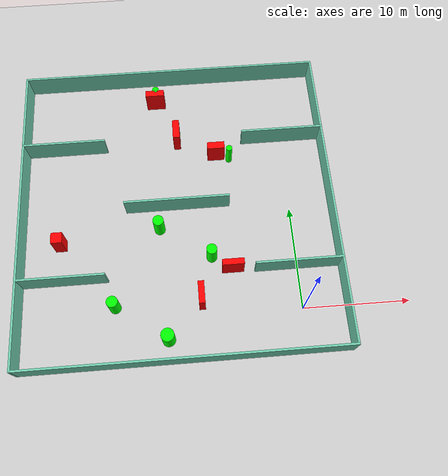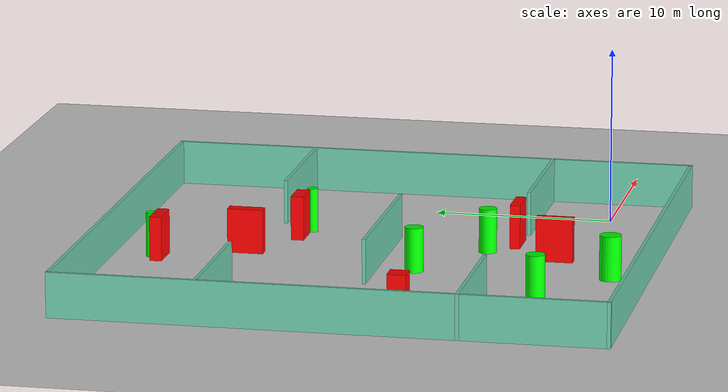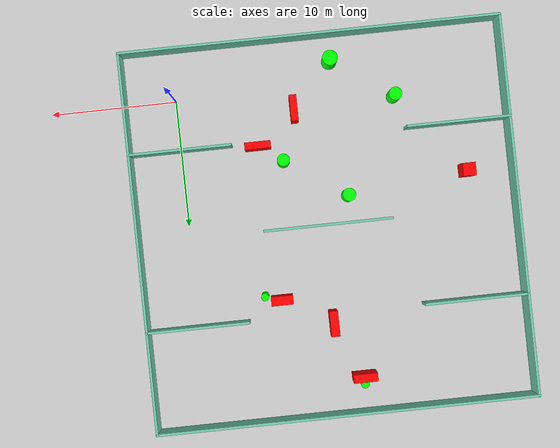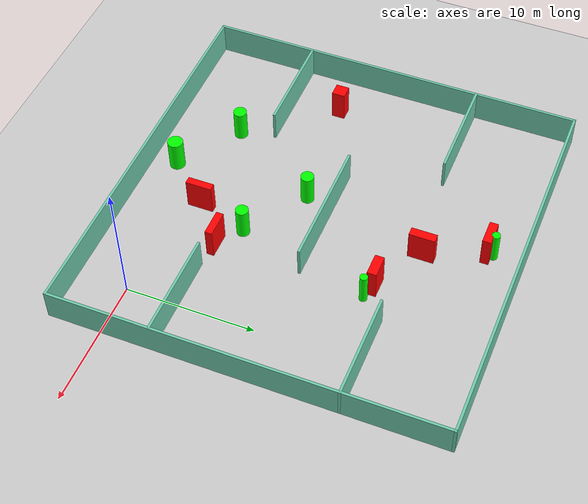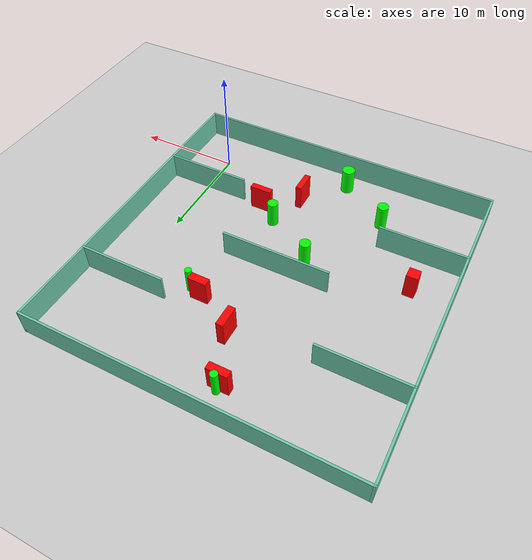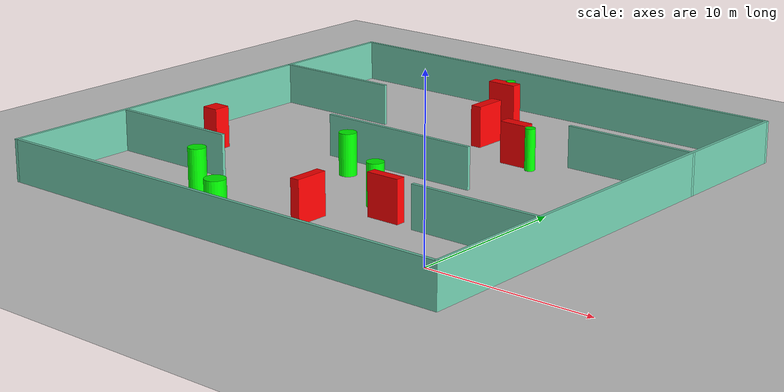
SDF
<sdf version="1.7">
 <world name="default">
  <light name="sun" type="directional">
   <pose>0 0 10 0 -0 0</pose>
   <diffuse>0.8 0.8 0.8 1</diffuse>
   <specular>0.2 0.2 0.2 1</specular>
   <attenuation>
    <range>1000</range>
    <constant>0.9</constant>
    <linear>0.01</linear>
    <quadratic>0.001</quadratic>
   </attenuation>
   <direction>-0.5 0.1 -0.9</direction>
   <spot><inner_angle>0</inner_angle><outer_angle>0</outer_angle><falloff>0</falloff></spot>
  </light>
  <model name="ground_plane">
   <static>1</static>
   <link name="link">
    <collision name="collision">
     <geometry><plane><normal>0 0 1</normal><size>100 100</size></plane></geometry>
     <surface>
      <contact><collide_bitmask>65535</collide_bitmask></contact>
      <friction><ode><mu>100</mu><mu2>50</mu2></ode></friction>
     </surface>
    </collision>
    <visual name="visual">
     <cast_shadows>0</cast_shadows>
     <geometry><plane><normal>0 0 1</normal><size>100 100</size></plane></geometry>
     <material>
      <script><uri>file://media/materials/scripts/gazebo.material</uri><name>Gazebo/Grey</name></script>
     </material>
    </visual>
   </link>
  </model>
  <gravity>0 0 -9.8</gravity>
  <magnetic_field>6e-06 2.3e-05 -4.2e-05</magnetic_field>
  <atmosphere type="adiabatic"/>
  <physics type="ode">
   <max_step_size>0.001</max_step_size>
   <real_time_factor>1</real_time_factor>
   <real_time_update_rate>1000</real_time_update_rate>
  </physics>
  <scene><ambient>0.4 0.4 0.4 1</ambient><background>0.7 0.7 0.7 1</background><shadows>1</shadows></scene>
  <spherical_coordinates>
   <surface_model>EARTH_WGS84</surface_model>
   <latitude_deg>0</latitude_deg>
   <longitude_deg>0</longitude_deg>
   <elevation>0</elevation>
   <heading_deg>0</heading_deg>
  </spherical_coordinates>
  <model name="my_base_walls">
   <link name="Wall_10">
    <collision name="Wall_10_Collision">
     <geometry><box><size>8.2 0.2 2.5</size></box></geometry>
     <pose>0 0 1.25 0 -0 0</pose>
    </collision>
    <visual name="Wall_10_Visual">
     <pose>0 0 1.25 0 -0 0</pose>
     <geometry><box><size>8.2 0.2 2.5</size></box></geometry>
     <material>
      <script><uri>file://media/materials/scripts/gazebo.material</uri><name>Gazebo/Grey</name></script>
      <ambient>0.435294 0.796078 0.67451 1</ambient>
     </material>
     <meta><layer>0</layer></meta>
    </visual>
    <pose>-11 -7 0 0 -0 0</pose>
   </link>
   <link name="Wall_12">
    <collision name="Wall_12_Collision">
     <geometry><box><size>8.2 0.2 2.5</size></box></geometry>
     <pose>0 0 1.25 0 -0 0</pose>
    </collision>
    <visual name="Wall_12_Visual">
     <pose>0 0 1.25 0 -0 0</pose>
     <geometry><box><size>8.2 0.2 2.5</size></box></geometry>
     <material>
      <script><uri>file://media/materials/scripts/gazebo.material</uri><name>Gazebo/Grey</name></script>
      <ambient>0.435294 0.796078 0.67451 1</ambient>
     </material>
     <meta><layer>0</layer></meta>
    </visual>
    <pose>-11 7 0 0 -0 0</pose>
   </link>
   <link name="Wall_14">
    <collision name="Wall_14_Collision">
     <geometry><box><size>8.2 0.2 2.5</size></box></geometry>
     <pose>0 0 1.25 0 -0 0</pose>
    </collision>
    <visual name="Wall_14_Visual">
     <pose>0 0 1.25 0 -0 0</pose>
     <geometry><box><size>8.2 0.2 2.5</size></box></geometry>
     <material>
      <script><uri>file://media/materials/scripts/gazebo.material</uri><name>Gazebo/Grey</name></script>
      <ambient>0.435294 0.796078 0.67451 1</ambient>
     </material>
     <meta><layer>0</layer></meta>
    </visual>
    <pose>11 7 0 0 -0 3.14159</pose>
   </link>
   <link name="Wall_16">
    <collision name="Wall_16_Collision">
     <geometry><box><size>10.2 0.2 2.5</size></box></geometry>
     <pose>0 0 1.25 0 -0 0</pose>
    </collision>
    <visual name="Wall_16_Visual">
     <pose>0 0 1.25 0 -0 0</pose>
     <geometry><box><size>10.2 0.2 2.5</size></box></geometry>
     <material>
      <script><uri>file://media/materials/scripts/gazebo.material</uri><name>Gazebo/Grey</name></script>
      <ambient>0.435294 0.796078 0.67451 1</ambient>
     </material>
     <meta><layer>0</layer></meta>
    </visual>
    <pose>0 0 0 0 -0 3.14159</pose>
   </link>
   <link name="Wall_2">
    <collision name="Wall_2_Collision">
     <geometry><box><size>30.2 0.2 2.5</size></box></geometry>
     <pose>0 0 1.25 0 -0 0</pose>
    </collision>
    <visual name="Wall_2_Visual">
     <pose>0 0 1.25 0 -0 0</pose>
     <geometry><box><size>30.2 0.2 2.5</size></box></geometry>
     <material>
      <script><uri>file://media/materials/scripts/gazebo.material</uri><name>Gazebo/Grey</name></script>
      <ambient>0.435294 0.796078 0.67451 1</ambient>
     </material>
     <meta><layer>0</layer></meta>
    </visual>
    <pose>0 -15 0 0 -0 3.14159</pose>
   </link>
   <link name="Wall_3">
    <collision name="Wall_3_Collision">
     <geometry><box><size>30.2 0.2 2.5</size></box></geometry>
     <pose>0 0 1.25 0 -0 0</pose>
    </collision>
    <visual name="Wall_3_Visual">
     <pose>0 0 1.25 0 -0 0</pose>
     <geometry><box><size>30.2 0.2 2.5</size></box></geometry>
     <material>
      <script><uri>file://media/materials/scripts/gazebo.material</uri><name>Gazebo/Grey</name></script>
      <ambient>0.435294 0.796078 0.67451 1</ambient>
     </material>
     <meta><layer>0</layer></meta>
    </visual>
    <pose>-15 0 0 0 -0 1.5708</pose>
   </link>
   <link name="Wall_4">
    <collision name="Wall_4_Collision">
     <geometry><box><size>30.2 0.2 2.5</size></box></geometry>
     <pose>0 0 1.25 0 -0 0</pose>
    </collision>
    <visual name="Wall_4_Visual">
     <pose>0 0 1.25 0 -0 0</pose>
     <geometry><box><size>30.2 0.2 2.5</size></box></geometry>
     <material>
      <script><uri>file://media/materials/scripts/gazebo.material</uri><name>Gazebo/Grey</name></script>
      <ambient>0.435294 0.796078 0.67451 1</ambient>
     </material>
     <meta><layer>0</layer></meta>
    </visual>
    <pose>0 15 0 0 -0 0</pose>
   </link>
   <link name="Wall_6">
    <collision name="Wall_6_Collision">
     <geometry><box><size>30.2 0.2 2.5</size></box></geometry>
     <pose>0 0 1.25 0 -0 0</pose>
    </collision>
    <visual name="Wall_6_Visual">
     <pose>0 0 1.25 0 -0 0</pose>
     <geometry><box><size>30.2 0.2 2.5</size></box></geometry>
     <material>
      <script><uri>file://media/materials/scripts/gazebo.material</uri><name>Gazebo/Grey</name></script>
      <ambient>0.435294 0.796078 0.67451 1</ambient>
     </material>
     <meta><layer>0</layer></meta>
    </visual>
    <pose>15 0 0 0 -0 1.5708</pose>
   </link>
   <link name="Wall_8">
    <collision name="Wall_8_Collision">
     <geometry><box><size>8.2 0.2 2.5</size></box></geometry>
     <pose>0 0 1.25 0 -0 0</pose>
    </collision>
    <visual name="Wall_8_Visual">
     <pose>0 0 1.25 0 -0 0</pose>
     <geometry><box><size>8.2 0.2 2.5</size></box></geometry>
     <material>
      <script><uri>file://media/materials/scripts/gazebo.material</uri><name>Gazebo/Grey</name></script>
      <ambient>0.435294 0.796078 0.67451 1</ambient>
     </material>
     <meta><layer>0</layer></meta>
    </visual>
    <pose>11 -7 0 0 -0 3.14159</pose>
   </link>
   <static>1</static>
   <pose>-11 11 0 0 -0 0</pose>
  </model>
  <model name="cylinder1">
   <static>1</static>
   <link name="link">
    <inertial>
     <mass>1</mass>
     <inertia><ixx>0.5</ixx><ixy>0</ixy><ixz>0</ixz><iyy>0.5</iyy><iyz>0</iyz><izz>1</izz></inertia>
    </inertial>
    <collision name="collision">
     <geometry><cylinder><radius>0.605148153335664</radius><length>2.5</length></cylinder></geometry>
    </collision>
    <visual name="visual">
     <geometry><cylinder><radius>0.605148153335664</radius><length>2.5</length></cylinder></geometry>
     <material>
      <ambient>0 1 0 1</ambient>
      <diffuse>0 1 0 1</diffuse>
      <specular>0.1 0.1 0.1 1</specular>
      <emissive>0 0 0 0</emissive>
     </material>
    </visual>
   </link>
   <pose>-12.473413764455339 -1.9422482072275091 1.25 0 0 0</pose>
  </model>
  <model name="cylinder2">
   <static>1</static>
   <link name="link">
    <inertial>
     <mass>1</mass>
     <inertia><ixx>0.5</ixx><ixy>0</ixy><ixz>0</ixz><iyy>0.5</iyy><iyz>0</iyz><izz>1</izz></inertia>
    </inertial>
    <collision name="collision">
     <geometry><cylinder><radius>0.330363234820491</radius><length>2.5</length></cylinder></geometry>
    </collision>
    <visual name="visual">
     <geometry><cylinder><radius>0.330363234820491</radius><length>2.5</length></cylinder></geometry>
     <material>
      <ambient>0 1 0 1</ambient>
      <diffuse>0 1 0 1</diffuse>
      <specular>0.1 0.1 0.1 1</specular>
      <emissive>0 0 0 0</emissive>
     </material>
    </visual>
   </link>
   <pose>-12.578528222453171 23.691308955064628 1.25 0 0 0</pose>
  </model>
  <model name="cylinder3">
   <static>1</static>
   <link name="link">
    <inertial>
     <mass>1</mass>
     <inertia><ixx>0.5</ixx><ixy>0</ixy><ixz>0</ixz><iyy>0.5</iyy><iyz>0</iyz><izz>1</izz></inertia>
    </inertial>
    <collision name="collision">
     <geometry><cylinder><radius>0.30529302602570885</radius><length>2.5</length></cylinder></geometry>
    </collision>
    <visual name="visual">
     <geometry><cylinder><radius>0.30529302602570885</radius><length>2.5</length></cylinder></geometry>
     <material>
      <ambient>0 1 0 1</ambient>
      <diffuse>0 1 0 1</diffuse>
      <specular>0.1 0.1 0.1 1</specular>
      <emissive>0 0 0 0</emissive>
     </material>
    </visual>
   </link>
   <pose>-5.5006853390046295 16.134438602820104 1.25 0 0 0</pose>
  </model>
  <model name="cylinder4">
   <static>1</static>
   <link name="link">
    <inertial>
     <mass>1</mass>
     <inertia><ixx>0.5</ixx><ixy>0</ixy><ixz>0</ixz><iyy>0.5</iyy><iyz>0</iyz><izz>1</izz></inertia>
    </inertial>
    <collision name="collision">
     <geometry><cylinder><radius>0.5236829169857475</radius><length>2.5</length></cylinder></geometry>
    </collision>
    <visual name="visual">
     <geometry><cylinder><radius>0.5236829169857475</radius><length>2.5</length></cylinder></geometry>
     <material>
      <ambient>0 1 0 1</ambient>
      <diffuse>0 1 0 1</diffuse>
      <specular>0.1 0.1 0.1 1</specular>
      <emissive>0 0 0 0</emissive>
     </material>
    </visual>
   </link>
   <pose>-17.272647907450004 1.3697300054511636 1.25 0 0 0</pose>
  </model>
  <model name="cylinder5">
   <static>1</static>
   <link name="link">
    <inertial>
     <mass>1</mass>
     <inertia><ixx>0.5</ixx><ixy>0</ixy><ixz>0</ixz><iyy>0.5</iyy><iyz>0</iyz><izz>1</izz></inertia>
    </inertial>
    <collision name="collision">
     <geometry><cylinder><radius>0.5189056114013142</radius><length>2.5</length></cylinder></geometry>
    </collision>
    <visual name="visual">
     <geometry><cylinder><radius>0.5189056114013142</radius><length>2.5</length></cylinder></geometry>
     <material>
      <ambient>0 1 0 1</ambient>
      <diffuse>0 1 0 1</diffuse>
      <specular>0.1 0.1 0.1 1</specular>
      <emissive>0 0 0 0</emissive>
     </material>
    </visual>
   </link>
   <pose>-12.871587281760602 8.852784395180125 1.25 0 0 0</pose>
  </model>
  <model name="cylinder6">
   <static>1</static>
   <link name="link">
    <inertial>
     <mass>1</mass>
     <inertia><ixx>0.5</ixx><ixy>0</ixy><ixz>0</ixz><iyy>0.5</iyy><iyz>0</iyz><izz>1</izz></inertia>
    </inertial>
    <collision name="collision">
     <geometry><cylinder><radius>0.5000360595300328</radius><length>2.5</length></cylinder></geometry>
    </collision>
    <visual name="visual">
     <geometry><cylinder><radius>0.5000360595300328</radius><length>2.5</length></cylinder></geometry>
     <material>
      <ambient>0 1 0 1</ambient>
      <diffuse>0 1 0 1</diffuse>
      <specular>0.1 0.1 0.1 1</specular>
      <emissive>0 0 0 0</emissive>
     </material>
    </visual>
   </link>
   <pose>-8.033483598619899 5.630076065675706 1.25 0 0 0</pose>
  </model>
  <model name="box1">
   <static>1</static>
   <link name="link">
    <inertial>
     <mass>1</mass>
     <inertia><ixx>0.083</ixx><ixy>0</ixy><ixz>0</ixz><iyy>0.083</iyy><iyz>0</iyz><izz>0.083</izz></inertia>
    </inertial>
    <collision name="collision">
     <geometry><box><size>1.036418891199498 1.0302534156905454 2.5</size></box></geometry>
    </collision>
    <visual name="visual">
     <geometry><box><size>1.036418891199498 1.0302534156905454 2.5</size></box></geometry>
     <material>
      <ambient>1 0 0 1</ambient>
      <diffuse>1 0 0 1</diffuse>
      <specular>0.1 0.1 0.1 1</specular>
      <emissive>0 0 0 0</emissive>
     </material>
    </visual>
    <sensor name="my_contact" type="contact">
     <contact><collision>box_collision</collision><topic>__default_topic__</topic></contact>
    </sensor>
   </link>
   <pose>-22.404666509861634 7.844915178745119 1.25 0 0 0</pose>
  </model>
  <model name="box2">
   <static>1</static>
   <link name="link">
    <inertial>
     <mass>1</mass>
     <inertia><ixx>0.083</ixx><ixy>0</ixy><ixz>0</ixz><iyy>0.083</iyy><iyz>0</iyz><izz>0.083</izz></inertia>
    </inertial>
    <collision name="collision">
     <geometry><box><size>0.5707857085622916 2.0570241481895186 2.5</size></box></geometry>
    </collision>
    <visual name="visual">
     <geometry><box><size>0.5707857085622916 2.0570241481895186 2.5</size></box></geometry>
     <material>
      <ambient>1 0 0 1</ambient>
      <diffuse>1 0 0 1</diffuse>
      <specular>0.1 0.1 0.1 1</specular>
      <emissive>0 0 0 0</emissive>
     </material>
    </visual>
    <sensor name="my_contact" type="contact">
     <contact><collision>box_collision</collision><topic>__default_topic__</topic></contact>
    </sensor>
   </link>
   <pose>-9.252393200395137 1.6514063352413855 1.25 0 0 0</pose>
  </model>
  <model name="box3">
   <static>1</static>
   <link name="link">
    <inertial>
     <mass>1</mass>
     <inertia><ixx>0.083</ixx><ixy>0</ixy><ixz>0</ixz><iyy>0.083</iyy><iyz>0</iyz><izz>0.083</izz></inertia>
    </inertial>
    <collision name="collision">
     <geometry><box><size>2.0469091964831563 0.567446478226598 2.5</size></box></geometry>
    </collision>
    <visual name="visual">
     <geometry><box><size>2.0469091964831563 0.567446478226598 2.5</size></box></geometry>
     <material>
      <ambient>1 0 0 1</ambient>
      <diffuse>1 0 0 1</diffuse>
      <specular>0.1 0.1 0.1 1</specular>
      <emissive>0 0 0 0</emissive>
     </material>
    </visual>
    <sensor name="my_contact" type="contact">
     <contact><collision>box_collision</collision><topic>__default_topic__</topic></contact>
    </sensor>
   </link>
   <pose>-6.141454234777186 4.265696228120432 1.25 0 0 0</pose>
  </model>
  <model name="box4">
   <static>1</static>
   <link name="link">
    <inertial>
     <mass>1</mass>
     <inertia><ixx>0.083</ixx><ixy>0</ixy><ixz>0</ixz><iyy>0.083</iyy><iyz>0</iyz><izz>0.083</izz></inertia>
    </inertial>
    <collision name="collision">
     <geometry><box><size>1.7176834039672526 0.7275595483215892 2.5</size></box></geometry>
    </collision>
    <visual name="visual">
     <geometry><box><size>1.7176834039672526 0.7275595483215892 2.5</size></box></geometry>
     <material>
      <ambient>1 0 0 1</ambient>
      <diffuse>1 0 0 1</diffuse>
      <specular>0.1 0.1 0.1 1</specular>
      <emissive>0 0 0 0</emissive>
     </material>
    </visual>
    <sensor name="my_contact" type="contact">
     <contact><collision>box_collision</collision><topic>__default_topic__</topic></contact>
    </sensor>
   </link>
   <pose>-6.803200622911675 16.552219213929853 1.25 0 0 0</pose>
  </model>
  <model name="box5">
   <static>1</static>
   <link name="link">
    <inertial>
     <mass>1</mass>
     <inertia><ixx>0.083</ixx><ixy>0</ixy><ixz>0</ixz><iyy>0.083</iyy><iyz>0</iyz><izz>0.083</izz></inertia>
    </inertial>
    <collision name="collision">
     <geometry><box><size>1.8982671899327024 0.6691847865861952 2.5</size></box></geometry>
    </collision>
    <visual name="visual">
     <geometry><box><size>1.8982671899327024 0.6691847865861952 2.5</size></box></geometry>
     <material>
      <ambient>1 0 0 1</ambient>
      <diffuse>1 0 0 1</diffuse>
      <specular>0.1 0.1 0.1 1</specular>
      <emissive>0 0 0 0</emissive>
     </material>
    </visual>
    <sensor name="my_contact" type="contact">
     <contact><collision>box_collision</collision><topic>__default_topic__</topic></contact>
    </sensor>
   </link>
   <pose>-12.678585943580263 23.239032751544126 1.25 0 0 0</pose>
  </model>
  <model name="box6">
   <static>1</static>
   <link name="link">
    <inertial>
     <mass>1</mass>
     <inertia><ixx>0.083</ixx><ixy>0</ixy><ixz>0</ixz><iyy>0.083</iyy><iyz>0</iyz><izz>0.083</izz></inertia>
    </inertial>
    <collision name="collision">
     <geometry><box><size>0.6723417483868019 2.0033666516671964 2.5</size></box></geometry>
    </collision>
    <visual name="visual">
     <geometry><box><size>0.6723417483868019 2.0033666516671964 2.5</size></box></geometry>
     <material>
      <ambient>1 0 0 1</ambient>
      <diffuse>1 0 0 1</diffuse>
      <specular>0.1 0.1 0.1 1</specular>
      <emissive>0 0 0 0</emissive>
     </material>
    </visual>
    <sensor name="my_contact" type="contact">
     <contact><collision>box_collision</collision><topic>__default_topic__</topic></contact>
    </sensor>
   </link>
   <pose>-10.691209153663257 18.77645678501484 1.25 0 0 0</pose>
  </model>
 </world>
</sdf>
